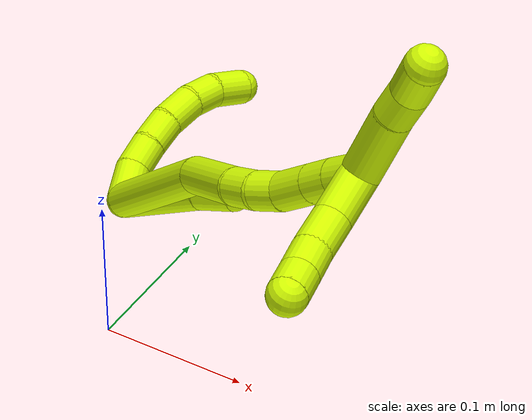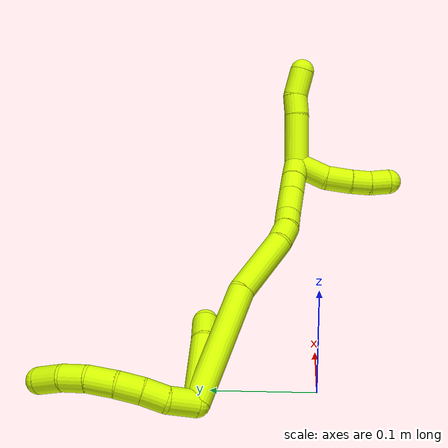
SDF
<sdf version="1.7">
 <world name="default">
  <model name="15">
   <static>0</static>
   <link name="15">
    <collision name="collision-cylinder-e_1_2_8">
     <pose>-0.006395 0.012126 0.001348 -1.46006 -0.482773 0.43373</pose>
     <geometry><cylinder><radius>0.0125</radius><length>0.02755</length></cylinder></geometry>
     <surface>
      <friction><ode><mu>1.16</mu><mu2>1.16</mu2><slip1>0</slip1><slip2>0</slip2></ode></friction>
      <contact><ode><kp>1e+06</kp><kd>1</kd><max_vel>0</max_vel><min_depth>0.001</min_depth></ode></contact>
     </surface>
    </collision>
    <visual name="visual-cylinder-e_1_2_8">
     <pose>-0.006395 0.012126 0.001348 -1.46006 -0.482773 0.43373</pose>
     <geometry><cylinder><radius>0.0125</radius><length>0.02755</length></cylinder></geometry>
     <material><ambient>0.835294 1 0 1</ambient></material>
    </visual>
    <collision name="collision-cylinder-e_2_8_9">
     <pose>-0.015029 0.034897 0.005941 -1.27498 -0.198568 0.147288</pose>
     <geometry><cylinder><radius>0.0125</radius><length>0.022703</length></cylinder></geometry>
     <surface>
      <friction><ode><mu>1.16</mu><mu2>1.16</mu2><slip1>0</slip1><slip2>0</slip2></ode></friction>
      <contact><ode><kp>1e+06</kp><kd>1</kd><max_vel>0</max_vel><min_depth>0.001</min_depth></ode></contact>
     </surface>
    </collision>
    <visual name="visual-cylinder-e_2_8_9">
     <pose>-0.015029 0.034897 0.005941 -1.27498 -0.198568 0.147288</pose>
     <geometry><cylinder><radius>0.0125</radius><length>0.022703</length></cylinder></geometry>
     <material><ambient>0.835294 1 0 1</ambient></material>
    </visual>
    <collision name="collision-cylinder-e_3_9_10">
     <pose>-0.019025 0.056987 0.011423 -1.3777 -0.149515 0.123186</pose>
     <geometry><cylinder><radius>0.0125</radius><length>0.023587</length></cylinder></geometry>
     <surface>
      <friction><ode><mu>1.16</mu><mu2>1.16</mu2><slip1>0</slip1><slip2>0</slip2></ode></friction>
      <contact><ode><kp>1e+06</kp><kd>1</kd><max_vel>0</max_vel><min_depth>0.001</min_depth></ode></contact>
     </surface>
    </collision>
    <visual name="visual-cylinder-e_3_9_10">
     <pose>-0.019025 0.056987 0.011423 -1.3777 -0.149515 0.123186</pose>
     <geometry><cylinder><radius>0.0125</radius><length>0.023587</length></cylinder></geometry>
     <material><ambient>0.835294 1 0 1</ambient></material>
    </visual>
    <collision name="collision-cylinder-e_4_10_11">
     <pose>-0.020703 0.081566 0.015175 -1.456 0.005929 -0.005285</pose>
     <geometry><cylinder><radius>0.0125</radius><length>0.026444</length></cylinder></geometry>
     <surface>
      <friction><ode><mu>1.16</mu><mu2>1.16</mu2><slip1>0</slip1><slip2>0</slip2></ode></friction>
      <contact><ode><kp>1e+06</kp><kd>1</kd><max_vel>0</max_vel><min_depth>0.001</min_depth></ode></contact>
     </surface>
    </collision>
    <visual name="visual-cylinder-e_4_10_11">
     <pose>-0.020703 0.081566 0.015175 -1.456 0.005929 -0.005285</pose>
     <geometry><cylinder><radius>0.0125</radius><length>0.026444</length></cylinder></geometry>
     <material><ambient>0.835294 1 0 1</ambient></material>
    </visual>
    <collision name="collision-cylinder-e_5_11_12">
     <pose>-0.01872 0.106144 0.016167 -1.61644 0.164797 -0.172458</pose>
     <geometry><cylinder><radius>0.0125</radius><length>0.023225</length></cylinder></geometry>
     <surface>
      <friction><ode><mu>1.16</mu><mu2>1.16</mu2><slip1>0</slip1><slip2>0</slip2></ode></friction>
      <contact><ode><kp>1e+06</kp><kd>1</kd><max_vel>0</max_vel><min_depth>0.001</min_depth></ode></contact>
     </surface>
    </collision>
    <visual name="visual-cylinder-e_5_11_12">
     <pose>-0.01872 0.106144 0.016167 -1.61644 0.164797 -0.172458</pose>
     <geometry><cylinder><radius>0.0125</radius><length>0.023225</length></cylinder></geometry>
     <material><ambient>0.835294 1 0 1</ambient></material>
    </visual>
    <collision name="collision-cylinder-e_6_12_6">
     <pose>-0.011916 0.129654 0.013222 -1.76889 0.378796 -0.459721</pose>
     <geometry><cylinder><radius>0.0125</radius><length>0.026492</length></cylinder></geometry>
     <surface>
      <friction><ode><mu>1.16</mu><mu2>1.16</mu2><slip1>0</slip1><slip2>0</slip2></ode></friction>
      <contact><ode><kp>1e+06</kp><kd>1</kd><max_vel>0</max_vel><min_depth>0.001</min_depth></ode></contact>
     </surface>
    </collision>
    <visual name="visual-cylinder-e_6_12_6">
     <pose>-0.011916 0.129654 0.013222 -1.76889 0.378796 -0.459721</pose>
     <geometry><cylinder><radius>0.0125</radius><length>0.026492</length></cylinder></geometry>
     <material><ambient>0.835294 1 0 1</ambient></material>
    </visual>
    <collision name="collision-cylinder-e_1_2_13">
     <pose>0.024791 0.001977 0.02618 -0.075383 0.756731 -0.029978</pose>
     <geometry><cylinder><radius>0.0125</radius><length>0.072218</length></cylinder></geometry>
     <surface>
      <friction><ode><mu>1.16</mu><mu2>1.16</mu2><slip1>0</slip1><slip2>0</slip2></ode></friction>
      <contact><ode><kp>1e+06</kp><kd>1</kd><max_vel>0</max_vel><min_depth>0.001</min_depth></ode></contact>
     </surface>
    </collision>
    <visual name="visual-cylinder-e_1_2_13">
     <pose>0.024791 0.001977 0.02618 -0.075383 0.756731 -0.029978</pose>
     <geometry><cylinder><radius>0.0125</radius><length>0.072218</length></cylinder></geometry>
     <material><ambient>0.835294 1 0 1</ambient></material>
    </visual>
    <collision name="collision-cylinder-e_2_13_5">
     <pose>0.060625 0.005627 0.060618 -0.199855 0.919008 -0.099144</pose>
     <geometry><cylinder><radius>0.0125</radius><length>0.027782</length></cylinder></geometry>
     <surface>
      <friction><ode><mu>1.16</mu><mu2>1.16</mu2><slip1>0</slip1><slip2>0</slip2></ode></friction>
      <contact><ode><kp>1e+06</kp><kd>1</kd><max_vel>0</max_vel><min_depth>0.001</min_depth></ode></contact>
     </surface>
    </collision>
    <visual name="visual-cylinder-e_2_13_5">
     <pose>0.060625 0.005627 0.060618 -0.199855 0.919008 -0.099144</pose>
     <geometry><cylinder><radius>0.0125</radius><length>0.027782</length></cylinder></geometry>
     <material><ambient>0.835294 1 0 1</ambient></material>
    </visual>
    <collision name="collision-cylinder-e_1_2_14">
     <pose>0.028417 -0.01349 0.050519 0.260945 0.49781 0.06668</pose>
     <geometry><cylinder><radius>0.0125</radius><length>0.119023</length></cylinder></geometry>
     <surface>
      <friction><ode><mu>1.16</mu><mu2>1.16</mu2><slip1>0</slip1><slip2>0</slip2></ode></friction>
      <contact><ode><kp>1e+06</kp><kd>1</kd><max_vel>0</max_vel><min_depth>0.001</min_depth></ode></contact>
     </surface>
    </collision>
    <visual name="visual-cylinder-e_1_2_14">
     <pose>0.028417 -0.01349 0.050519 0.260945 0.49781 0.06668</pose>
     <geometry><cylinder><radius>0.0125</radius><length>0.119023</length></cylinder></geometry>
     <material><ambient>0.835294 1 0 1</ambient></material>
    </visual>
    <collision name="collision-cylinder-e_2_14_15">
     <pose>0.076495 -0.041622 0.125295 0.543038 0.606616 0.173816</pose>
     <geometry><cylinder><radius>0.0125</radius><length>0.068976</length></cylinder></geometry>
     <surface>
      <friction><ode><mu>1.16</mu><mu2>1.16</mu2><slip1>0</slip1><slip2>0</slip2></ode></friction>
      <contact><ode><kp>1e+06</kp><kd>1</kd><max_vel>0</max_vel><min_depth>0.001</min_depth></ode></contact>
     </surface>
    </collision>
    <visual name="visual-cylinder-e_2_14_15">
     <pose>0.076495 -0.041622 0.125295 0.543038 0.606616 0.173816</pose>
     <geometry><cylinder><radius>0.0125</radius><length>0.068976</length></cylinder></geometry>
     <material><ambient>0.835294 1 0 1</ambient></material>
    </visual>
    <collision name="collision-cylinder-e_3_15_16">
     <pose>0.10414 -0.058721 0.15706 0.316439 0.790762 0.132986</pose>
     <geometry><cylinder><radius>0.0125</radius><length>0.022461</length></cylinder></geometry>
     <surface>
      <friction><ode><mu>1.16</mu><mu2>1.16</mu2><slip1>0</slip1><slip2>0</slip2></ode></friction>
      <contact><ode><kp>1e+06</kp><kd>1</kd><max_vel>0</max_vel><min_depth>0.001</min_depth></ode></contact>
     </surface>
    </collision>
    <visual name="visual-cylinder-e_3_15_16">
     <pose>0.10414 -0.058721 0.15706 0.316439 0.790762 0.132986</pose>
     <geometry><cylinder><radius>0.0125</radius><length>0.022461</length></cylinder></geometry>
     <material><ambient>0.835294 1 0 1</ambient></material>
    </visual>
    <collision name="collision-cylinder-e_4_16_17">
     <pose>0.119827 -0.060874 0.171215 -0.045844 0.85826 -0.02098</pose>
     <geometry><cylinder><radius>0.0125</radius><length>0.020361</length></cylinder></geometry>
     <surface>
      <friction><ode><mu>1.16</mu><mu2>1.16</mu2><slip1>0</slip1><slip2>0</slip2></ode></friction>
      <contact><ode><kp>1e+06</kp><kd>1</kd><max_vel>0</max_vel><min_depth>0.001</min_depth></ode></contact>
     </surface>
    </collision>
    <visual name="visual-cylinder-e_4_16_17">
     <pose>0.119827 -0.060874 0.171215 -0.045844 0.85826 -0.02098</pose>
     <geometry><cylinder><radius>0.0125</radius><length>0.020361</length></cylinder></geometry>
     <material><ambient>0.835294 1 0 1</ambient></material>
    </visual>
    <collision name="collision-cylinder-e_5_17_18">
     <pose>0.135609 -0.061016 0.18949 0.038396 0.606907 0.012024</pose>
     <geometry><cylinder><radius>0.0125</radius><length>0.028329</length></cylinder></geometry>
     <surface>
      <friction><ode><mu>1.16</mu><mu2>1.16</mu2><slip1>0</slip1><slip2>0</slip2></ode></friction>
      <contact><ode><kp>1e+06</kp><kd>1</kd><max_vel>0</max_vel><min_depth>0.001</min_depth></ode></contact>
     </surface>
    </collision>
    <visual name="visual-cylinder-e_5_17_18">
     <pose>0.135609 -0.061016 0.18949 0.038396 0.606907 0.012024</pose>
     <geometry><cylinder><radius>0.0125</radius><length>0.028329</length></cylinder></geometry>
     <material><ambient>0.835294 1 0 1</ambient></material>
    </visual>
    <collision name="collision-cylinder-e_6_18_19">
     <pose>0.149423 -0.061742 0.209313 0.034078 0.61024 0.010734</pose>
     <geometry><cylinder><radius>0.0125</radius><length>0.020017</length></cylinder></geometry>
     <surface>
      <friction><ode><mu>1.16</mu><mu2>1.16</mu2><slip1>0</slip1><slip2>0</slip2></ode></friction>
      <contact><ode><kp>1e+06</kp><kd>1</kd><max_vel>0</max_vel><min_depth>0.001</min_depth></ode></contact>
     </surface>
    </collision>
    <visual name="visual-cylinder-e_6_18_19">
     <pose>0.149423 -0.061742 0.209313 0.034078 0.61024 0.010734</pose>
     <geometry><cylinder><radius>0.0125</radius><length>0.020017</length></cylinder></geometry>
     <material><ambient>0.835294 1 0 1</ambient></material>
    </visual>
    <collision name="collision-cylinder-e_7_19_1">
     <pose>0.161446 -0.062565 0.225798 0.065578 0.647985 0.02203</pose>
     <geometry><cylinder><radius>0.0125</radius><length>0.020834</length></cylinder></geometry>
     <surface>
      <friction><ode><mu>1.16</mu><mu2>1.16</mu2><slip1>0</slip1><slip2>0</slip2></ode></friction>
      <contact><ode><kp>1e+06</kp><kd>1</kd><max_vel>0</max_vel><min_depth>0.001</min_depth></ode></contact>
     </surface>
    </collision>
    <visual name="visual-cylinder-e_7_19_1">
     <pose>0.161446 -0.062565 0.225798 0.065578 0.647985 0.02203</pose>
     <geometry><cylinder><radius>0.0125</radius><length>0.020834</length></cylinder></geometry>
     <material><ambient>0.835294 1 0 1</ambient></material>
    </visual>
    <collision name="collision-cylinder-e_1_1_20">
     <pose>0.170424 -0.07843 0.228011 1.94828 0.161874 0.237714</pose>
     <geometry><cylinder><radius>0.0125</radius><length>0.033397</length></cylinder></geometry>
     <surface>
      <friction><ode><mu>1.16</mu><mu2>1.16</mu2><slip1>0</slip1><slip2>0</slip2></ode></friction>
      <contact><ode><kp>1e+06</kp><kd>1</kd><max_vel>0</max_vel><min_depth>0.001</min_depth></ode></contact>
     </surface>
    </collision>
    <visual name="visual-cylinder-e_1_1_20">
     <pose>0.170424 -0.07843 0.228011 1.94828 0.161874 0.237714</pose>
     <geometry><cylinder><radius>0.0125</radius><length>0.033397</length></cylinder></geometry>
     <material><ambient>0.835294 1 0 1</ambient></material>
    </visual>
    <collision name="collision-cylinder-e_2_20_21">
     <pose>0.17557 -0.106621 0.22077 1.66122 0.187656 0.205322</pose>
     <geometry><cylinder><radius>0.0125</radius><length>0.02631</length></cylinder></geometry>
     <surface>
      <friction><ode><mu>1.16</mu><mu2>1.16</mu2><slip1>0</slip1><slip2>0</slip2></ode></friction>
      <contact><ode><kp>1e+06</kp><kd>1</kd><max_vel>0</max_vel><min_depth>0.001</min_depth></ode></contact>
     </surface>
    </collision>
    <visual name="visual-cylinder-e_2_20_21">
     <pose>0.17557 -0.106621 0.22077 1.66122 0.187656 0.205322</pose>
     <geometry><cylinder><radius>0.0125</radius><length>0.02631</length></cylinder></geometry>
     <material><ambient>0.835294 1 0 1</ambient></material>
    </visual>
    <collision name="collision-cylinder-e_3_21_22">
     <pose>0.180502 -0.129206 0.219474 1.5841 0.249714 0.253023</pose>
     <geometry><cylinder><radius>0.0125</radius><length>0.020053</length></cylinder></geometry>
     <surface>
      <friction><ode><mu>1.16</mu><mu2>1.16</mu2><slip1>0</slip1><slip2>0</slip2></ode></friction>
      <contact><ode><kp>1e+06</kp><kd>1</kd><max_vel>0</max_vel><min_depth>0.001</min_depth></ode></contact>
     </surface>
    </collision>
    <visual name="visual-cylinder-e_3_21_22">
     <pose>0.180502 -0.129206 0.219474 1.5841 0.249714 0.253023</pose>
     <geometry><cylinder><radius>0.0125</radius><length>0.020053</length></cylinder></geometry>
     <material><ambient>0.835294 1 0 1</ambient></material>
    </visual>
    <collision name="collision-cylinder-e_4_22_4">
     <pose>0.18544 -0.148624 0.220834 1.41851 0.245614 0.211073</pose>
     <geometry><cylinder><radius>0.0125</radius><length>0.02024</length></cylinder></geometry>
     <surface>
      <friction><ode><mu>1.16</mu><mu2>1.16</mu2><slip1>0</slip1><slip2>0</slip2></ode></friction>
      <contact><ode><kp>1e+06</kp><kd>1</kd><max_vel>0</max_vel><min_depth>0.001</min_depth></ode></contact>
     </surface>
    </collision>
    <visual name="visual-cylinder-e_4_22_4">
     <pose>0.18544 -0.148624 0.220834 1.41851 0.245614 0.211073</pose>
     <geometry><cylinder><radius>0.0125</radius><length>0.02024</length></cylinder></geometry>
     <material><ambient>0.835294 1 0 1</ambient></material>
    </visual>
    <collision name="collision-cylinder-e_1_1_23">
     <pose>0.169091 -0.061753 0.25967 -0.052998 0.052952 -0.001404</pose>
     <geometry><cylinder><radius>0.0125</radius><length>0.051313</length></cylinder></geometry>
     <surface>
      <friction><ode><mu>1.16</mu><mu2>1.16</mu2><slip1>0</slip1><slip2>0</slip2></ode></friction>
      <contact><ode><kp>1e+06</kp><kd>1</kd><max_vel>0</max_vel><min_depth>0.001</min_depth></ode></contact>
     </surface>
    </collision>
    <visual name="visual-cylinder-e_1_1_23">
     <pose>0.169091 -0.061753 0.25967 -0.052998 0.052952 -0.001404</pose>
     <geometry><cylinder><radius>0.0125</radius><length>0.051313</length></cylinder></geometry>
     <material><ambient>0.835294 1 0 1</ambient></material>
    </visual>
    <collision name="collision-cylinder-e_2_23_24">
     <pose>0.171621 -0.058905 0.295429 -0.145452 0.11352 -0.008279</pose>
     <geometry><cylinder><radius>0.0125</radius><length>0.0207</length></cylinder></geometry>
     <surface>
      <friction><ode><mu>1.16</mu><mu2>1.16</mu2><slip1>0</slip1><slip2>0</slip2></ode></friction>
      <contact><ode><kp>1e+06</kp><kd>1</kd><max_vel>0</max_vel><min_depth>0.001</min_depth></ode></contact>
     </surface>
    </collision>
    <visual name="visual-cylinder-e_2_23_24">
     <pose>0.171621 -0.058905 0.295429 -0.145452 0.11352 -0.008279</pose>
     <geometry><cylinder><radius>0.0125</radius><length>0.0207</length></cylinder></geometry>
     <material><ambient>0.835294 1 0 1</ambient></material>
    </visual>
    <collision name="collision-cylinder-e_3_24_3">
     <pose>0.17434 -0.060108 0.319249 0.194942 0.110715 0.010837</pose>
     <geometry><cylinder><radius>0.0125</radius><length>0.027987</length></cylinder></geometry>
     <surface>
      <friction><ode><mu>1.16</mu><mu2>1.16</mu2><slip1>0</slip1><slip2>0</slip2></ode></friction>
      <contact><ode><kp>1e+06</kp><kd>1</kd><max_vel>0</max_vel><min_depth>0.001</min_depth></ode></contact>
     </surface>
    </collision>
    <visual name="visual-cylinder-e_3_24_3">
     <pose>0.17434 -0.060108 0.319249 0.194942 0.110715 0.010837</pose>
     <geometry><cylinder><radius>0.0125</radius><length>0.027987</length></cylinder></geometry>
     <material><ambient>0.835294 1 0 1</ambient></material>
    </visual>
    <collision name="collision-sphere-3">
     <pose>0.175886 -0.062803 0.332893 0 -0 0</pose>
     <geometry><sphere><radius>0.0125</radius></sphere></geometry>
     <surface>
      <friction><ode><mu>1.16</mu><mu2>1.16</mu2><slip1>0</slip1><slip2>0</slip2></ode></friction>
      <contact><ode><kp>1e+06</kp><kd>1</kd><max_vel>0</max_vel><min_depth>0.001</min_depth></ode></contact>
     </surface>
    </collision>
    <visual name="visual-sphere-3">
     <pose>0.175886 -0.062803 0.332893 0 -0 0</pose>
     <geometry><sphere><radius>0.0125</radius></sphere></geometry>
     <material><ambient>0.835294 1 0 1</ambient></material>
    </visual>
    <collision name="collision-sphere-24">
     <pose>0.172794 -0.057414 0.305604 0 -0 0</pose>
     <geometry><sphere><radius>0.0125</radius></sphere></geometry>
     <surface>
      <friction><ode><mu>1.16</mu><mu2>1.16</mu2><slip1>0</slip1><slip2>0</slip2></ode></friction>
      <contact><ode><kp>1e+06</kp><kd>1</kd><max_vel>0</max_vel><min_depth>0.001</min_depth></ode></contact>
     </surface>
    </collision>
    <visual name="visual-sphere-24">
     <pose>0.172794 -0.057414 0.305604 0 -0 0</pose>
     <geometry><sphere><radius>0.0125</radius></sphere></geometry>
     <material><ambient>0.835294 1 0 1</ambient></material>
    </visual>
    <collision name="collision-sphere-23">
     <pose>0.170449 -0.060395 0.285254 0 -0 0</pose>
     <geometry><sphere><radius>0.0125</radius></sphere></geometry>
     <surface>
      <friction><ode><mu>1.16</mu><mu2>1.16</mu2><slip1>0</slip1><slip2>0</slip2></ode></friction>
      <contact><ode><kp>1e+06</kp><kd>1</kd><max_vel>0</max_vel><min_depth>0.001</min_depth></ode></contact>
     </surface>
    </collision>
    <visual name="visual-sphere-23">
     <pose>0.170449 -0.060395 0.285254 0 -0 0</pose>
     <geometry><sphere><radius>0.0125</radius></sphere></geometry>
     <material><ambient>0.835294 1 0 1</ambient></material>
    </visual>
    <collision name="collision-sphere-4">
     <pose>0.187901 -0.158327 0.222323 0 -0 0</pose>
     <geometry><sphere><radius>0.0125</radius></sphere></geometry>
     <surface>
      <friction><ode><mu>1.16</mu><mu2>1.16</mu2><slip1>0</slip1><slip2>0</slip2></ode></friction>
      <contact><ode><kp>1e+06</kp><kd>1</kd><max_vel>0</max_vel><min_depth>0.001</min_depth></ode></contact>
     </surface>
    </collision>
    <visual name="visual-sphere-4">
     <pose>0.187901 -0.158327 0.222323 0 -0 0</pose>
     <geometry><sphere><radius>0.0125</radius></sphere></geometry>
     <material><ambient>0.835294 1 0 1</ambient></material>
    </visual>
    <collision name="collision-sphere-22">
     <pose>0.18298 -0.138921 0.219344 0 -0 0</pose>
     <geometry><sphere><radius>0.0125</radius></sphere></geometry>
     <surface>
      <friction><ode><mu>1.16</mu><mu2>1.16</mu2><slip1>0</slip1><slip2>0</slip2></ode></friction>
      <contact><ode><kp>1e+06</kp><kd>1</kd><max_vel>0</max_vel><min_depth>0.001</min_depth></ode></contact>
     </surface>
    </collision>
    <visual name="visual-sphere-22">
     <pose>0.18298 -0.138921 0.219344 0 -0 0</pose>
     <geometry><sphere><radius>0.0125</radius></sphere></geometry>
     <material><ambient>0.835294 1 0 1</ambient></material>
    </visual>
    <collision name="collision-sphere-21">
     <pose>0.178024 -0.119492 0.219603 0 -0 0</pose>
     <geometry><sphere><radius>0.0125</radius></sphere></geometry>
     <surface>
      <friction><ode><mu>1.16</mu><mu2>1.16</mu2><slip1>0</slip1><slip2>0</slip2></ode></friction>
      <contact><ode><kp>1e+06</kp><kd>1</kd><max_vel>0</max_vel><min_depth>0.001</min_depth></ode></contact>
     </surface>
    </collision>
    <visual name="visual-sphere-21">
     <pose>0.178024 -0.119492 0.219603 0 -0 0</pose>
     <geometry><sphere><radius>0.0125</radius></sphere></geometry>
     <material><ambient>0.835294 1 0 1</ambient></material>
    </visual>
    <collision name="collision-sphere-20">
     <pose>0.173116 -0.093749 0.221937 0 -0 0</pose>
     <geometry><sphere><radius>0.0125</radius></sphere></geometry>
     <surface>
      <friction><ode><mu>1.16</mu><mu2>1.16</mu2><slip1>0</slip1><slip2>0</slip2></ode></friction>
      <contact><ode><kp>1e+06</kp><kd>1</kd><max_vel>0</max_vel><min_depth>0.001</min_depth></ode></contact>
     </surface>
    </collision>
    <visual name="visual-sphere-20">
     <pose>0.173116 -0.093749 0.221937 0 -0 0</pose>
     <geometry><sphere><radius>0.0125</radius></sphere></geometry>
     <material><ambient>0.835294 1 0 1</ambient></material>
    </visual>
    <collision name="collision-sphere-12">
     <pose>-0.016815 0.117588 0.015644 0 -0 0</pose>
     <geometry><sphere><radius>0.0125</radius></sphere></geometry>
     <surface>
      <friction><ode><mu>1.16</mu><mu2>1.16</mu2><slip1>0</slip1><slip2>0</slip2></ode></friction>
      <contact><ode><kp>1e+06</kp><kd>1</kd><max_vel>0</max_vel><min_depth>0.001</min_depth></ode></contact>
     </surface>
    </collision>
    <visual name="visual-sphere-12">
     <pose>-0.016815 0.117588 0.015644 0 -0 0</pose>
     <geometry><sphere><radius>0.0125</radius></sphere></geometry>
     <material><ambient>0.835294 1 0 1</ambient></material>
    </visual>
    <collision name="collision-sphere-11">
     <pose>-0.020625 0.094701 0.01669 0 -0 0</pose>
     <geometry><sphere><radius>0.0125</radius></sphere></geometry>
     <surface>
      <friction><ode><mu>1.16</mu><mu2>1.16</mu2><slip1>0</slip1><slip2>0</slip2></ode></friction>
      <contact><ode><kp>1e+06</kp><kd>1</kd><max_vel>0</max_vel><min_depth>0.001</min_depth></ode></contact>
     </surface>
    </collision>
    <visual name="visual-sphere-11">
     <pose>-0.020625 0.094701 0.01669 0 -0 0</pose>
     <geometry><sphere><radius>0.0125</radius></sphere></geometry>
     <material><ambient>0.835294 1 0 1</ambient></material>
    </visual>
    <collision name="collision-sphere-10">
     <pose>-0.020782 0.068432 0.013661 0 -0 0</pose>
     <geometry><sphere><radius>0.0125</radius></sphere></geometry>
     <surface>
      <friction><ode><mu>1.16</mu><mu2>1.16</mu2><slip1>0</slip1><slip2>0</slip2></ode></friction>
      <contact><ode><kp>1e+06</kp><kd>1</kd><max_vel>0</max_vel><min_depth>0.001</min_depth></ode></contact>
     </surface>
    </collision>
    <visual name="visual-sphere-10">
     <pose>-0.020782 0.068432 0.013661 0 -0 0</pose>
     <geometry><sphere><radius>0.0125</radius></sphere></geometry>
     <material><ambient>0.835294 1 0 1</ambient></material>
    </visual>
    <collision name="collision-sphere-9">
     <pose>-0.017268 0.045542 0.009185 0 -0 0</pose>
     <geometry><sphere><radius>0.0125</radius></sphere></geometry>
     <surface>
      <friction><ode><mu>1.16</mu><mu2>1.16</mu2><slip1>0</slip1><slip2>0</slip2></ode></friction>
      <contact><ode><kp>1e+06</kp><kd>1</kd><max_vel>0</max_vel><min_depth>0.001</min_depth></ode></contact>
     </surface>
    </collision>
    <visual name="visual-sphere-9">
     <pose>-0.017268 0.045542 0.009185 0 -0 0</pose>
     <geometry><sphere><radius>0.0125</radius></sphere></geometry>
     <material><ambient>0.835294 1 0 1</ambient></material>
    </visual>
    <collision name="collision-sphere-2">
     <geometry><sphere><radius>0.0125</radius></sphere></geometry>
     <surface>
      <friction><ode><mu>1.16</mu><mu2>1.16</mu2><slip1>0</slip1><slip2>0</slip2></ode></friction>
      <contact><ode><kp>1e+06</kp><kd>1</kd><max_vel>0</max_vel><min_depth>0.001</min_depth></ode></contact>
     </surface>
    </collision>
    <visual name="visual-sphere-2">
     <geometry><sphere><radius>0.0125</radius></sphere></geometry>
     <material><ambient>0.835294 1 0 1</ambient></material>
    </visual>
    <collision name="collision-sphere-19">
     <pose>0.155158 -0.062021 0.217511 0 -0 0</pose>
     <geometry><sphere><radius>0.0125</radius></sphere></geometry>
     <surface>
      <friction><ode><mu>1.16</mu><mu2>1.16</mu2><slip1>0</slip1><slip2>0</slip2></ode></friction>
      <contact><ode><kp>1e+06</kp><kd>1</kd><max_vel>0</max_vel><min_depth>0.001</min_depth></ode></contact>
     </surface>
    </collision>
    <visual name="visual-sphere-19">
     <pose>0.155158 -0.062021 0.217511 0 -0 0</pose>
     <geometry><sphere><radius>0.0125</radius></sphere></geometry>
     <material><ambient>0.835294 1 0 1</ambient></material>
    </visual>
    <collision name="collision-sphere-8">
     <pose>-0.01279 0.024252 0.002697 0 -0 0</pose>
     <geometry><sphere><radius>0.0125</radius></sphere></geometry>
     <surface>
      <friction><ode><mu>1.16</mu><mu2>1.16</mu2><slip1>0</slip1><slip2>0</slip2></ode></friction>
      <contact><ode><kp>1e+06</kp><kd>1</kd><max_vel>0</max_vel><min_depth>0.001</min_depth></ode></contact>
     </surface>
    </collision>
    <visual name="visual-sphere-8">
     <pose>-0.01279 0.024252 0.002697 0 -0 0</pose>
     <geometry><sphere><radius>0.0125</radius></sphere></geometry>
     <material><ambient>0.835294 1 0 1</ambient></material>
    </visual>
    <collision name="collision-sphere-6">
     <pose>-0.007018 0.14172 0.0108 0 -0 0</pose>
     <geometry><sphere><radius>0.0125</radius></sphere></geometry>
     <surface>
      <friction><ode><mu>1.16</mu><mu2>1.16</mu2><slip1>0</slip1><slip2>0</slip2></ode></friction>
      <contact><ode><kp>1e+06</kp><kd>1</kd><max_vel>0</max_vel><min_depth>0.001</min_depth></ode></contact>
     </surface>
    </collision>
    <visual name="visual-sphere-6">
     <pose>-0.007018 0.14172 0.0108 0 -0 0</pose>
     <geometry><sphere><radius>0.0125</radius></sphere></geometry>
     <material><ambient>0.835294 1 0 1</ambient></material>
    </visual>
    <collision name="collision-sphere-13">
     <pose>0.049581 0.003955 0.05236 0 -0 0</pose>
     <geometry><sphere><radius>0.0125</radius></sphere></geometry>
     <surface>
      <friction><ode><mu>1.16</mu><mu2>1.16</mu2><slip1>0</slip1><slip2>0</slip2></ode></friction>
      <contact><ode><kp>1e+06</kp><kd>1</kd><max_vel>0</max_vel><min_depth>0.001</min_depth></ode></contact>
     </surface>
    </collision>
    <visual name="visual-sphere-13">
     <pose>0.049581 0.003955 0.05236 0 -0 0</pose>
     <geometry><sphere><radius>0.0125</radius></sphere></geometry>
     <material><ambient>0.835294 1 0 1</ambient></material>
    </visual>
    <collision name="collision-sphere-5">
     <pose>0.071668 0.0073 0.068877 0 -0 0</pose>
     <geometry><sphere><radius>0.0125</radius></sphere></geometry>
     <surface>
      <friction><ode><mu>1.16</mu><mu2>1.16</mu2><slip1>0</slip1><slip2>0</slip2></ode></friction>
      <contact><ode><kp>1e+06</kp><kd>1</kd><max_vel>0</max_vel><min_depth>0.001</min_depth></ode></contact>
     </surface>
    </collision>
    <visual name="visual-sphere-5">
     <pose>0.071668 0.0073 0.068877 0 -0 0</pose>
     <geometry><sphere><radius>0.0125</radius></sphere></geometry>
     <material><ambient>0.835294 1 0 1</ambient></material>
    </visual>
    <collision name="collision-sphere-14">
     <pose>0.056834 -0.02698 0.101037 0 -0 0</pose>
     <geometry><sphere><radius>0.0125</radius></sphere></geometry>
     <surface>
      <friction><ode><mu>1.16</mu><mu2>1.16</mu2><slip1>0</slip1><slip2>0</slip2></ode></friction>
      <contact><ode><kp>1e+06</kp><kd>1</kd><max_vel>0</max_vel><min_depth>0.001</min_depth></ode></contact>
     </surface>
    </collision>
    <visual name="visual-sphere-14">
     <pose>0.056834 -0.02698 0.101037 0 -0 0</pose>
     <geometry><sphere><radius>0.0125</radius></sphere></geometry>
     <material><ambient>0.835294 1 0 1</ambient></material>
    </visual>
    <collision name="collision-sphere-15">
     <pose>0.096156 -0.056263 0.149554 0 -0 0</pose>
     <geometry><sphere><radius>0.0125</radius></sphere></geometry>
     <surface>
      <friction><ode><mu>1.16</mu><mu2>1.16</mu2><slip1>0</slip1><slip2>0</slip2></ode></friction>
      <contact><ode><kp>1e+06</kp><kd>1</kd><max_vel>0</max_vel><min_depth>0.001</min_depth></ode></contact>
     </surface>
    </collision>
    <visual name="visual-sphere-15">
     <pose>0.096156 -0.056263 0.149554 0 -0 0</pose>
     <geometry><sphere><radius>0.0125</radius></sphere></geometry>
     <material><ambient>0.835294 1 0 1</ambient></material>
    </visual>
    <collision name="collision-sphere-16">
     <pose>0.112123 -0.061179 0.164566 0 -0 0</pose>
     <geometry><sphere><radius>0.0125</radius></sphere></geometry>
     <surface>
      <friction><ode><mu>1.16</mu><mu2>1.16</mu2><slip1>0</slip1><slip2>0</slip2></ode></friction>
      <contact><ode><kp>1e+06</kp><kd>1</kd><max_vel>0</max_vel><min_depth>0.001</min_depth></ode></contact>
     </surface>
    </collision>
    <visual name="visual-sphere-16">
     <pose>0.112123 -0.061179 0.164566 0 -0 0</pose>
     <geometry><sphere><radius>0.0125</radius></sphere></geometry>
     <material><ambient>0.835294 1 0 1</ambient></material>
    </visual>
    <collision name="collision-sphere-17">
     <pose>0.12753 -0.060569 0.177863 0 -0 0</pose>
     <geometry><sphere><radius>0.0125</radius></sphere></geometry>
     <surface>
      <friction><ode><mu>1.16</mu><mu2>1.16</mu2><slip1>0</slip1><slip2>0</slip2></ode></friction>
      <contact><ode><kp>1e+06</kp><kd>1</kd><max_vel>0</max_vel><min_depth>0.001</min_depth></ode></contact>
     </surface>
    </collision>
    <visual name="visual-sphere-17">
     <pose>0.12753 -0.060569 0.177863 0 -0 0</pose>
     <geometry><sphere><radius>0.0125</radius></sphere></geometry>
     <material><ambient>0.835294 1 0 1</ambient></material>
    </visual>
    <collision name="collision-sphere-18">
     <pose>0.143687 -0.061462 0.201116 0 -0 0</pose>
     <geometry><sphere><radius>0.0125</radius></sphere></geometry>
     <surface>
      <friction><ode><mu>1.16</mu><mu2>1.16</mu2><slip1>0</slip1><slip2>0</slip2></ode></friction>
      <contact><ode><kp>1e+06</kp><kd>1</kd><max_vel>0</max_vel><min_depth>0.001</min_depth></ode></contact>
     </surface>
    </collision>
    <visual name="visual-sphere-18">
     <pose>0.143687 -0.061462 0.201116 0 -0 0</pose>
     <geometry><sphere><radius>0.0125</radius></sphere></geometry>
     <material><ambient>0.835294 1 0 1</ambient></material>
    </visual>
    <collision name="collision-sphere-1">
     <pose>0.167733 -0.06311 0.234086 0 -0 0</pose>
     <geometry><sphere><radius>0.0125</radius></sphere></geometry>
     <surface>
      <friction><ode><mu>1.16</mu><mu2>1.16</mu2><slip1>0</slip1><slip2>0</slip2></ode></friction>
      <contact><ode><kp>1e+06</kp><kd>1</kd><max_vel>0</max_vel><min_depth>0.001</min_depth></ode></contact>
     </surface>
    </collision>
    <visual name="visual-sphere-1">
     <pose>0.167733 -0.06311 0.234086 0 -0 0</pose>
     <geometry><sphere><radius>0.0125</radius></sphere></geometry>
     <material><ambient>0.835294 1 0 1</ambient></material>
    </visual>
    <inertial>
     <pose>0.079515 -0.023427 0.122324 0 -0 0</pose>
     <mass>0.75</mass>
     <inertia>
      <ixx>0.00026</ixx>
      <ixy>0</ixy>
      <ixz>0</ixz>
      <iyy>0.000246</iyy>
      <iyz>0</iyz>
      <izz>-4.9e-05</izz>
     </inertia>
    </inertial>
   </link>
   <pose>-0.057441 0.107415 0.012677 0.014431 0.3226 -0.085982</pose>
  </model>
 </world>
</sdf>
